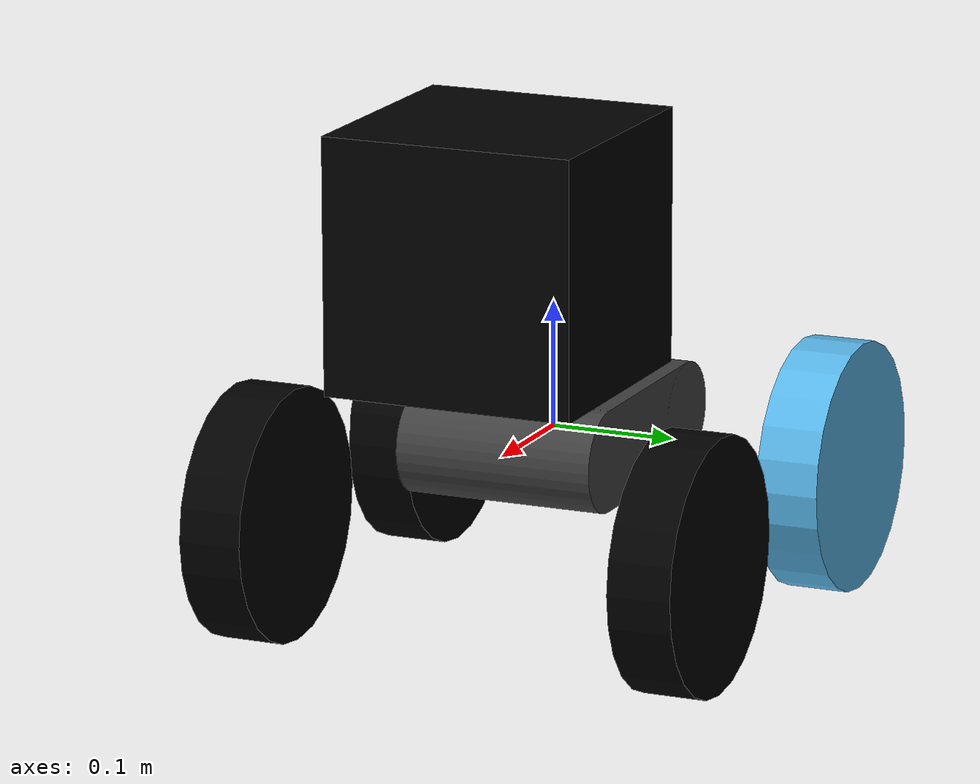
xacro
<?xml version="1.0"?>

<robot name="test_bot" xmlns:xacro="http://www.ros.org/wiki/xacro">

    <xacro:property name="PI" value="3.14159265"/>
    <xacro:property name="body_len" value="0.5"/>
    <xacro:property name="body_wid" value="0.3"/>
    <xacro:property name="body_hei" value="0.1"/>
    <xacro:property name="body_den" value="7850.0"/>
    <xacro:property name="body_mas" value="${body_den * body_len * body_wid * body_hei}"/>
    <xacro:property name="body_ine_x" value="${1.0/12.0 * body_mas *(body_hei + body_wid * body_wid)}"/>
    <xacro:property name="body_ine_y" value="${1.0/12.0 * body_mas * (body_len*body_len + body_hei*body_hei)}"/>
    <xacro:property name="body_ine_z" value="${1.0/12.0 * body_mas * (body_len*body_len + body_wid*body_wid)}"/>

    <xacro:property name="wheel_rad" value="0.1"/>
    <xacro:property name="wheel_wid" value="0.05"/>
    <xacro:property name="wheel_sep" value= "${body_wid + wheel_wid}"/>
    <xacro:property name="wheel_offset" value="${body_len/2 - wheel_rad}" />
    <xacro:property name="wheel_den" value="900"/> <!-- Ruber -->
    <xacro:property name="wheel_mas" value="${wheel_den * PI * wheel_rad * wheel_rad * wheel_wid}"/>
    <xacro:property name="wheel_ine_x" value="${1.0/12.0 * wheel_mas * (3*wheel_rad*wheel_rad + wheel_wid*wheel_wid)}"/>
    <xacro:property name="wheel_ine_y" value="${1.0/12.0 * wheel_mas * (3*wheel_rad*wheel_rad + wheel_wid*wheel_wid)}"/>
    <xacro:property name="wheel_ine_z" value="${1.0/2.0 * wheel_mas * wheel_rad * wheel_rad}"/>

    <xacro:property name="max_linear_acceleration" value="10"/>

    <link name="body">
        <visual>
            <origin xyz="0 0 0" xpy="0 0 0"/>
            <geometry>
                <!--box  size="${body_len} ${body_wid} ${body_hei}"/-->
                <mesh filename="package://hitomi/meshes/body.dae"/>
            </geometry>
            <material name="body_material">
                <color rgba="0.25 0.25 0.25 1.0"/>
            </material>
        </visual>
        <collision>
            <origin xyz="0 0 0" xpy="0 0 0"/>
            <geometry>
                <box  size="${body_len} ${body_wid} ${body_hei}"/>
            </geometry>
        </collision>
        <inertial>
            <mass value="10"/>
            <inertia ixx="${body_ine_x}" ixy ="0" ixz="0" iyy="${body_ine_y}" iyz="0" izz="${body_ine_z}"/>
            <origin xyz="0 0 0" rpy="0 0 0"/>
        </inertial>
    </link>

    <link name="left_drive_wheel">
        <visual>
            <origin xyz="0 0 0" rpy="1.570795 0 0"/>
            <geometry>
                <cylinder radius="${wheel_rad}" length="${wheel_wid}"/>
            </geometry>
        </visual>
        <collision>
            <origin xyz="0 0 0" rpy="1.570795 0 0"/>
            <geometry>
                <cylinder radius="${wheel_rad}" length="${wheel_wid}"/>
            </geometry>
        </collision>
        <inertial>
            <mass value="2"/>
            <inertia ixx="${wheel_ine_x}" ixy="0.0" ixz="0.0" iyy="${wheel_ine_y}" iyz="0" izz="${wheel_ine_z}"/>
            <origin xyz="0.0 0.0 0.0" rpy="1.570795 0.0 0.0"/>
        </inertial>
    </link>

    <link name="right_drive_wheel">
        <visual>
            <origin xyz="0 0 0" rpy="1.570795 0 0"/>
            <geometry>
                <cylinder radius="${wheel_rad}" length="${wheel_wid}"/>
            </geometry>
            <material name="wheel_material">
                <color rgba="0.0 0.0 0.0 1.0"/>
            </material>
        </visual>
        <collision>
            <origin xyz="0 0 0" rpy="1.570795 0 0"/>
            <geometry>
                <cylinder radius="${wheel_rad}" length="${wheel_wid}"/>
            </geometry>
        </collision>
        <inertial>
            <mass value="2"/>
            <inertia ixx="${wheel_ine_x}" ixy="0.0" ixz="0.0" iyy="${wheel_ine_y}" iyz="0" izz="${wheel_ine_z}"/>
            <origin xyz="0.0 0.0 0.0" rpy="1.570795 0.0 0.0"/>
        </inertial>
    </link>

    <link name="left_dummy_wheel">
        <visual>
            <origin xyz="0 0 0" rpy="1.570795 0 0"/>
            <geometry>
                <cylinder radius="${wheel_rad}" length="${wheel_wid}"/>
            </geometry>
            <material name="wheel_material">
                <color rgba="0.0 0.0 0.0 1.0"/>
            </material>
        </visual>
        <collision>
            <origin xyz="0 0 0" rpy="1.570795 0 0"/>
            <geometry>
                <cylinder radius="${wheel_rad}" length="${wheel_wid}"/>
            </geometry>
        </collision>
        <inertial>
            <mass value="2"/>
            <inertia ixx="${wheel_ine_x}" ixy="0.0" ixz="0.0" iyy="${wheel_ine_y}" iyz="0" izz="${wheel_ine_z}"/>
            <origin xyz="0.0 0.0 0.0" rpy="1.570795 0.0 0.0"/>
        </inertial>
    </link>

    <link name="right_dummy_wheel">
        <visual>
            <origin xyz="0 0 0" rpy="1.570795 0 0"/>
            <geometry>
                <cylinder radius="${wheel_rad}" length="${wheel_wid}"/>
            </geometry>
            <material name="wheel_material">
                <color rgba="0.0 0.0 0.0 1.0"/>
            </material>
        </visual>
        <collision>
            <origin xyz="0 0 0" rpy="1.570795 0 0"/>
            <geometry>
                <cylinder radius="${wheel_rad}" length="${wheel_wid}"/>
            </geometry>
        </collision>
        <inertial>
            <mass value="2"/>
            <inertia ixx="${wheel_ine_x}" ixy="0.0" ixz="0.0" iyy="${wheel_ine_y}" iyz="0" izz="${wheel_ine_z}"/>
            <origin xyz="0.0 0.0 0.0" rpy="1.570795 0.0 0.0"/>
        </inertial>
    </link>
    <link name="camera_link">
        <visual>
            <geometry>
                <box size="0.2 0.2 0.2"/>
            </geometry>
            <material name="black">
                <color rgba="0 0 0 1"/>
            </material>
        </visual>
        <collision>
            <geometry>
                <box size="0.2 0.2 0.2"/>
            </geometry>
        </collision>
        <inertial>
            <mass value="10"/>
            <inertia ixx="0.005" ixy="0" ixz="0" iyy="0.005" iyz="0" izz="0.005" />
            <origin xyz="0 0 0" rpy="0 0 0"/>
        </inertial>
    </link>
    <!--Joints-->

    <joint name="ldrive_wheel_joint" type="continuous">
        <origin xyz="-${wheel_offset} ${wheel_sep/2} -${wheel_rad/2}"/>
        <parent link="body"/>
        <child link="left_drive_wheel"/>
        <axis xyz="0 1 0"/>
        <limit effort="100" velocity="10.0"/>
        <dynamics damping="0.1" friction="0.1"/>
    </joint>

    <joint name="rdrive_wheel_joint" type="continuous">
        <origin xyz="-${wheel_offset} ${-wheel_sep/2} ${-wheel_rad/2}"/>
        <parent link="body"/>
        <child link="right_drive_wheel"/>
        <axis xyz="0 1 0"/>
        <limit effort="100" velocity="10.0"/>
        <dynamics damping="0.1" friction="0.1"/>
    </joint>

    <joint name="ldummy_wheel_joint" type="continuous">
        <origin xyz="${wheel_offset} ${wheel_sep/2} ${-wheel_rad/2}"/>
        <parent link="body"/>
        <child link="left_dummy_wheel"/>
        <axis xyz="0 1 0"/>
        <limit effort="100" velocity="10.0"/>
        <dynamics damping="0.1" friction="0.1"/>
    </joint>

    <joint name="rdummy_wheel_joint" type="continuous">
        <origin xyz="${wheel_offset} ${-wheel_sep/2} ${-wheel_rad/2}"/>
        <parent link="body"/>
        <child link="right_dummy_wheel"/>
        <axis xyz="0 1 0"/>
        <limit effort="100" velocity="10.0"/>
        <dynamics damping="0.1" friction="0.1"/>
    </joint>

    <joint name="camera_joint" type="fixed">
        <parent link="body"/>
        <child link="camera_link"/>
        <origin xyz="0.1035 -0.0000 0.1630"/>
        <axis xyz="0 0 1" />
    </joint>

 <!-- Gazebo Parameters -->
 <gazebo reference="body">
    <mu1>1.0</mu1>
    <mu2>1.0</mu2>
</gazebo>

 <gazebo reference="left_drive_wheel">
    <mu1>1.0</mu1>
    <mu2>1.0</mu2>
</gazebo>

<gazebo reference="right_drive_wheel">
    <mu1>1.0</mu1>
    <mu2>1.0</mu2>
</gazebo>

<gazebo reference="left_dummy_wheel">
    <mu1>0.000001</mu1>
    <mu2>0.000001</mu2>
</gazebo>

<gazebo reference="right_dummy_wheel">
    <mu1>0.000001</mu1>
    <mu2>0.000001</mu2>
</gazebo>
<gazebo>
    <plugin filename="libgz-sim-sensors-system.so"
      name="gz::sim::systems::Sensors">
      <render_engine>ogre2</render_engine>
    </plugin>
</gazebo>
<gazebo reference="camera_link">
    <sensor type="camera" name="camera_front">
        <pose>-0.005 0 0 0 0 0</pose>
        <always_on>true</always_on>
        <update_rate>30</update_rate>
        <visualize>true</visualize>
        <topic>camera</topic>
        <camera>
            <camera_info_topic>/camera_info</camera_info_topic>
            <horizontal_fov>1.5</horizontal_fov>
            <image>
                <width>640</width>
                <height>480</height>
            </image>
            <clip>
                <near>0.01</near>
                <far>300</far>
            </clip>
        </camera>
    </sensor>
</gazebo>

<gazebo>
    <plugin filename="gz-sim-diff-drive-system" name="gz::sim::systems::DiffDrive">
        <right_joint>rdrive_wheel_joint</right_joint>
        <left_joint>ldrive_wheel_joint</left_joint>
        <wheel_seperation>${wheel_sep}</wheel_seperation>
        <wheel_radius>${wheel_rad}</wheel_radius>
        <max_linear_acceleration>${max_linear_acceleration}</max_linear_acceleration>
        <odom_publish_frequency>100</odom_publish_frequency>
        <topic>cmd_vel</topic>
        <odom_topic>odom</odom_topic>
    </plugin>
</gazebo>
</robot>
